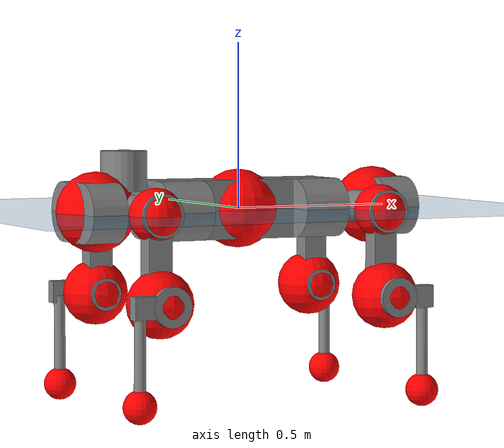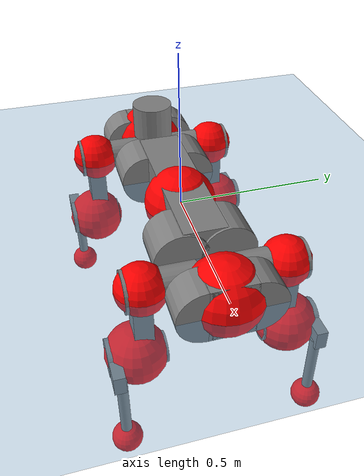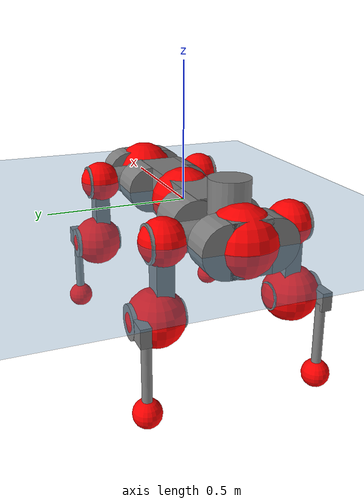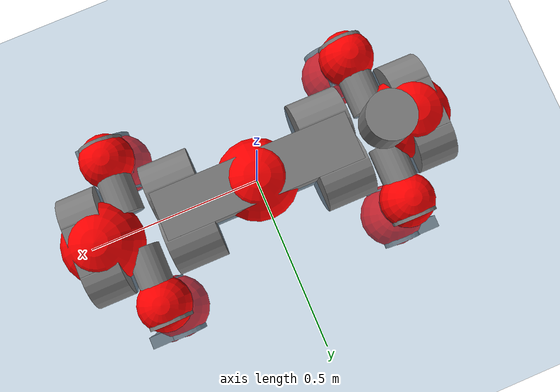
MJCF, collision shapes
<mujoco model="anymal_c">
  <compiler angle="radian" assetdir="assets" balanceinertia="true" inertiafromgeom="false"/>

  <option timestep="0.005" density="1.2" viscosity="2e-05"/>

  <size nkey="1"/>

  <visual>
    <quality shadowsize="8192"/>
    <map shadowclip="0.5"/>
  </visual>

  <default>
    <default class="/">
      <material specular="0" shininess="0.25"/>
      <geom contype="0" conaffinity="0" group="1" solref="-1000 -80"/>
      <site size="0.01 0.005 0.005" group="5"/>
      <general forcelimited="true" forcerange="-80 80" biastype="affine" gainprm="80" biasprm="0 -80 -2"/>
      <default class="anymal_c">
        <joint armature="0.01" damping="0.01" frictionloss="0.1"/>
        <default class="visual">
          <geom type="mesh" group="2"/>
          <default class="visual_zflip"/>
        </default>
        <default class="collision">
          <geom type="cylinder" group="3"/>
          <default class="foot">
            <geom size="0.03 0 0" type="sphere" condim="6" priority="1" friction="0.8 0.02 0.01" solimp="0.015 1 0.03"/>
          </default>
        </default>
      </default>
      <default class="reward_collision_sphere">
        <geom group="5" rgba="1 0 0 1"/>
      </default>
    </default>
  </default>

  <asset>
    <texture type="skybox" colorspace="auto" name="//unnamed_texture_0" builtin="gradient" rgb1="0.95 0.95 0.95" rgb2="0.95 0.95 0.95" width="100" height="600"/>
    <texture type="2d" colorspace="auto" name="texplane" builtin="checker" rgb1="0.345 0.575 0.748" rgb2="0.345 0.575 0.748" markrgb="1 1 1" width="512" height="512"/>
    <texture type="2d" colorspace="linear" name="base" file="base.png"/>
    <texture type="2d" colorspace="linear" name="top_shell" file="top_shell.png"/>
    <texture type="2d" colorspace="linear" name="bottom_shell" file="bottom_shell.png"/>
    <texture type="2d" colorspace="linear" name="remote" file="remote.png"/>
    <texture type="2d" colorspace="linear" name="hatch" file="hatch.png"/>
    <texture type="2d" colorspace="linear" name="handle" file="handle.png"/>
    <texture type="2d" colorspace="linear" name="face" file="face.png"/>
    <texture type="2d" colorspace="linear" name="battery" file="battery.png"/>
    <texture type="2d" colorspace="linear" name="lidar_cage" file="lidar_cage.png"/>
    <texture type="2d" colorspace="linear" name="depth_camera" file="depth_camera.png"/>
    <texture type="2d" colorspace="linear" name="wide_angle_camera" file="wide_angle_camera.png"/>
    <texture type="2d" colorspace="linear" name="lidar" file="lidar.png"/>
    <texture type="2d" colorspace="linear" name="drive" file="drive.png"/>
    <texture type="2d" colorspace="linear" name="hip_l" file="hip_l.png"/>
    <texture type="2d" colorspace="linear" name="shank_l" file="shank_l.png"/>
    <texture type="2d" colorspace="linear" name="foot" file="foot.png"/>
    <texture type="2d" colorspace="linear" name="thigh" file="thigh.png"/>
    <texture type="2d" colorspace="linear" name="shank_r" file="shank_r.png"/>
    <texture type="2d" colorspace="linear" name="hip_r" file="hip_r.png"/>
    <material name="MatPlane" class="/" texture="texplane" texuniform="true" texrepeat="2 2" specular="0.9" shininess="0.5"/>
    <material name="black_plastic" class="/" rgba="0.007 0.007 0.007 1"/>
    <material name="green" class="/" rgba="0.052 0.178 0.033 1"/>
    <material name="red" class="/" rgba="0.178 0.006 0.005 1"/>
    <material name="yellow" class="/" rgba="0.178 0.119 0.006 1"/>
    <material name="lwl" class="/" rgba="0.8 0.8 0.8 1"/>
    <material name="base" class="/" texture="base"/>
    <material name="top_shell" class="/" texture="top_shell"/>
    <material name="bottom_shell" class="/" texture="bottom_shell"/>
    <material name="hip_l" class="/" texture="hip_l"/>
    <material name="thigh" class="/" texture="thigh"/>
    <material name="shank_l" class="/" texture="shank_l"/>
    <material name="foot" class="/" texture="foot"/>
    <material name="hip_r" class="/" texture="hip_r"/>
    <material name="shank" class="/" texture="shank_r"/>
    <material name="hatch" class="/" texture="hatch"/>
    <material name="remote" class="/" texture="remote"/>
    <material name="handle" class="/" texture="handle"/>
    <material name="face" class="/" texture="face"/>
    <material name="depth_camera" class="/" texture="depth_camera"/>
    <material name="wide_angle_camera" class="/" texture="wide_angle_camera"/>
    <material name="battery" class="/" texture="battery"/>
    <material name="lidar_cage" class="/" texture="lidar_cage"/>
    <material name="lidar" class="/" texture="lidar"/>
    <material name="drive" class="/" texture="drive"/>
    <mesh name="base_0" class="/" file="base_0.obj"/>
    <mesh name="base_1" class="/" file="base_1.obj"/>
    <mesh name="base_2" class="/" file="base_2.obj"/>
    <mesh name="base_3" class="/" file="base_3.obj"/>
    <mesh name="base_4" class="/" file="base_4.obj"/>
    <mesh name="base_5" class="/" file="base_5.obj"/>
    <mesh name="top_shell" class="/" file="top_shell.obj"/>
    <mesh name="bottom_shell" class="/" file="bottom_shell.obj"/>
    <mesh name="remote" class="/" file="remote.obj"/>
    <mesh name="handle" class="/" file="handle.obj"/>
    <mesh name="face" class="/" file="face.obj"/>
    <mesh name="wide_angle_camera" class="/" file="wide_angle_camera.obj"/>
    <mesh name="depth_camera" class="/" file="depth_camera.obj"/>
    <mesh name="battery" class="/" file="battery.obj"/>
    <mesh name="lidar_cage" class="/" file="lidar_cage.obj"/>
    <mesh name="lidar" class="/" file="lidar.obj"/>
    <mesh name="drive" class="/" file="drive.obj"/>
    <mesh name="hip_l" class="/" file="hip_l.obj"/>
    <mesh name="thigh" class="/" file="thigh.obj"/>
    <mesh name="shank_l" class="/" file="shank_l.obj"/>
    <mesh name="foot" class="/" file="foot.obj"/>
    <mesh name="hip_r" class="/" file="hip_r.obj"/>
    <mesh name="hatch" class="/" file="hatch.obj"/>
    <mesh name="shank_r" class="/" file="shank_r.obj"/>
  </asset>

  <worldbody>
    <geom name="floor" class="/" size="100 100 0.125" type="plane" group="0" material="MatPlane"/>
    <light name="toplight_shadow" class="/" pos="0 0 5" dir="0.0990148 0.0990148 -0.990148" type="directional" ambient="0.04 0.04 0.04" diffuse="0.55 0.55 0.55" specular="0.12 0.12 0.12"/>
    <light name="toplight_fill" class="/" pos="0 0 5" dir="0.0990148 0.0990148 -0.990148" type="directional" castshadow="false" ambient="0.04 0.04 0.04" diffuse="0.3 0.3 0.3" specular="0.08 0.08 0.08"/>
    <body name="trunk" childclass="anymal_c" pos="-0.00270099 -0.00215127 8.4136e-05" quat="0.999999 -0.000977635 0.000763611 0.000404959">
      <inertial pos="-7.1595e-05 0.000585538 0.044785" quat="0.500142 0.500377 0.499563 0.499918" mass="18.3571" diaginertia="0.759342 0.775574 0.129166"/>
      <joint name="//unnamed_joint_0" type="free" armature="0" damping="0" frictionloss="0"/>
      <geom name="//unnamed_geom_1" class="visual" material="green" mesh="base_0"/>
      <geom name="//unnamed_geom_2" class="visual" material="yellow" mesh="base_1"/>
      <geom name="//unnamed_geom_3" class="visual" material="red" mesh="base_2"/>
      <geom name="//unnamed_geom_4" class="visual" material="black_plastic" mesh="base_3"/>
      <geom name="//unnamed_geom_5" class="visual" material="lwl" mesh="base_4"/>
      <geom name="//unnamed_geom_6" class="visual" material="base" mesh="base_5"/>
      <geom name="trunk_1" class="collision" size="0.287928 0.0694999 0.089357" type="box"/>
      <geom name="trunk_2" class="collision" size="0.089357 0.0719821" pos="0.225067 0.0732773 0" quat="0.707107 0 0.707107 0"/>
      <geom name="trunk_3" class="collision" size="0.089357 0.0719821" pos="-0.225067 0.0732773 0" quat="0.707107 0 0.707107 0"/>
      <geom name="trunk_4" class="collision" size="0.089357 0.0719821" pos="0.225067 -0.0732773 0" quat="0.707107 0 0.707107 0"/>
      <geom name="trunk_5" class="collision" size="0.089357 0.0719821" pos="-0.225067 -0.0732773 0" quat="0.707107 0 0.707107 0"/>
      <geom name="//unnamed_geom_12" class="visual" material="top_shell" mesh="top_shell"/>
      <geom name="//unnamed_geom_13" class="visual" material="bottom_shell" mesh="bottom_shell"/>
      <geom name="//unnamed_geom_14" class="visual" material="remote" mesh="remote"/>
      <geom name="//unnamed_geom_15" class="visual" material="handle" mesh="handle"/>
      <geom name="//unnamed_geom_16" class="visual" pos="0.428921 0 0" quat="1 0 0 0" material="face" mesh="face"/>
      <geom name="trunk_6" class="collision" size="0.0546071 0.0694999 0.089357" pos="0.485834 0 0" type="box"/>
      <geom name="//unnamed_geom_18" class="collision" size="0.089357 0.0546071" pos="0.485834 0.0732773 0" quat="0.707107 0 0.707107 0"/>
      <geom name="//unnamed_geom_19" class="collision" size="0.089357 0.0546071" pos="0.485834 -0.0732773 0" quat="0.707107 0 0.707107 0"/>
      <geom name="//unnamed_geom_20" class="visual" pos="0.477706 0 -0.0251436" quat="0.965926 0 0.258819 0" material="depth_camera" mesh="depth_camera"/>
      <geom name="//unnamed_geom_21" class="visual" pos="0.530848 0 0.0134275" material="wide_angle_camera" mesh="wide_angle_camera"/>
      <geom name="//unnamed_geom_22" class="visual_zflip" pos="-0.428921 0 0" quat="0 0 0 1" material="face" mesh="face"/>
      <geom name="trunk_7" class="collision" size="0.0546071 0.0694999 0.089357" pos="-0.485834 0 0" quat="0 0 0 1" type="box"/>
      <geom name="//unnamed_geom_24" class="collision" size="0.089357 0.0546071" pos="-0.485834 -0.0732773 0" quat="0 -0.707107 0 0.707107"/>
      <geom name="//unnamed_geom_25" class="collision" size="0.089357 0.0546071" pos="-0.485834 0.0732773 0" quat="0 -0.707107 0 0.707107"/>
      <geom name="//unnamed_geom_26" class="visual" pos="-0.477706 0 -0.0251436" quat="0 -0.258819 0 0.965926" material="depth_camera" mesh="depth_camera"/>
      <geom name="//unnamed_geom_27" class="visual_zflip" pos="-0.530848 0 0.0134275" quat="0 0 0 1" material="wide_angle_camera" mesh="wide_angle_camera"/>
      <geom name="//unnamed_geom_28" class="visual" material="battery" mesh="battery"/>
      <geom name="//unnamed_geom_29" class="visual" pos="0 0.0801919 0.0271042" quat="0.683013 -0.183013 0.183013 0.683013" material="depth_camera" mesh="depth_camera"/>
      <geom name="//unnamed_geom_30" class="visual" pos="0 -0.0801919 0.0271042" quat="0.683013 0.183013 0.183013 -0.683013" material="depth_camera" mesh="depth_camera"/>
      <geom name="//unnamed_geom_31" class="visual" pos="-0.376664 0 0.0659264" quat="1 0 0 0" material="lidar_cage" mesh="lidar_cage"/>
      <geom name="trunk_8" class="collision" size="0.0694999 0.0595714" pos="-0.376664 0 0.119744"/>
      <geom name="//unnamed_geom_33" class="visual" pos="-0.376664 4.72547e-06 0.127547" quat="0.707107 0 0 -0.707107" material="lidar" mesh="lidar"/>
      <geom name="//unnamed_geom_34" class="visual" pos="0.310334 0.108816 2.58513e-09" quat="0.258819 0.965926 0 0" material="drive" mesh="drive"/>
      <geom name="//unnamed_geom_35" class="visual" pos="0.310334 -0.108816 -2.58513e-09" quat="0.258819 -0.965926 0 0" material="drive" mesh="drive"/>
      <geom name="//unnamed_geom_36" class="visual" pos="-0.310334 0.108816 -2.58513e-09" quat="0 0 0.965926 -0.258819" material="drive" mesh="drive"/>
      <geom name="//unnamed_geom_37" class="visual" pos="-0.310334 -0.108816 2.58513e-09" quat="0 0 -0.965926 -0.258819" material="drive" mesh="drive"/>
      <geom name="//unnamed_geom_38" class="visual" pos="0.120036 0 0.0654779" quat="1 0 0 0" material="hatch" mesh="hatch"/>
      <geom name="//unnamed_geom_39" class="reward_collision_sphere" size="0.119143"/>
      <geom name="//unnamed_geom_40" class="reward_collision_sphere" size="0.119143" pos="0.465656 0 0"/>
      <geom name="//unnamed_geom_41" class="reward_collision_sphere" size="0.119143" pos="-0.465656 0 0"/>
      <site name="imu" pos="0.260219 0.00720091 0.0460594" size="0.00992856"/>
      <camera name="track" pos="0 -2.09364 0" quat="0.707107 0.707107 0 0" mode="trackcom"/>
      <camera name="ego_camera" pos="0.465656 0 -0.0358783" quat="-0.5 -0.5 0.5 0.5"/>
      <body name="LF_HIP" pos="0.310023 0.107854 0.00071916" quat="0.25884 0.965919 0.000308831 0.00119638">
        <inertial pos="0.0561164 -0.0166097 -0.00834604" quat="-0.129237 0.71053 -0.135551 0.678286" mass="2.8393" diaginertia="0.00727024 0.00617451 0.00200451"/>
        <joint name="LF_HAA" pos="0 0 0" axis="0.999992 0.00357615 0.00156399" range="-0.723606 0.435088" armature="0.011155" damping="0" frictionloss="0.100054"/>
        <geom name="//unnamed_geom_42" class="visual" pos="0 0.000152071 -2.49776e-05" quat="0.258819 -0.965926 0 0" material="hip_l" mesh="hip_l"/>
        <geom name="//unnamed_geom_43" class="visual" pos="0.061984 -0.0752119 -0.0423152" quat="0.183013 -0.683013 0.683013 0.183013" material="drive" mesh="drive"/>
        <geom name="//unnamed_geom_44" class="collision" size="0.0496428 0.0694999" pos="0.061984 -0.0125197 -0.00619349" quat="-0.353553 -0.612372 0.612372 -0.353553"/>
        <body name="LF_THIGH" pos="0.0630513 -0.0777493 -0.0376632" quat="0.183127 -0.683083 0.682872 0.183162">
          <inertial pos="0.0347388 0.000467109 -0.217532" quat="0.993173 -0.00456921 -0.0803103 0.0844835" mass="3.03458" diaginertia="0.0358729 0.0370391 0.00242725"/>
          <joint name="LF_HFE" pos="0 0 0" axis="0.999988 -0.00486245 0.000334063" stiffness="0.0125439" range="-3.19665 3.18652" armature="0.0111665" damping="0" frictionloss="0.103219"/>
          <geom name="//unnamed_geom_45" class="visual" pos="-0.000239309 -3.77096e-07 0" quat="0.707107 0 0 -0.707107" material="thigh" mesh="thigh"/>
          <geom name="//unnamed_geom_46" class="collision" size="0.0645356 0.0397142" pos="0.0413917 0 0" quat="0.5 0.5 -0.5 -0.5"/>
          <geom name="//unnamed_geom_47" class="collision" size="0.0372321 0.0297857 0.140304" pos="0.0310437 0 -0.126753" quat="0.707107 0 0 -0.707107" type="box"/>
          <geom name="//unnamed_geom_48" class="visual" pos="0.10379 0 -0.255633" quat="1 0 0 0" material="drive" mesh="drive"/>
          <geom name="//unnamed_geom_49" class="collision" size="0.0496428 0.0694999" pos="0.0313542 0 -0.255633" quat="0.707107 0 0.707107 0"/>
          <geom name="//unnamed_geom_50" class="reward_collision_sphere" size="0.0794285" pos="0.0258698 0 0"/>
          <body name="LF_SHANK" pos="0.103218 -0.000943537 -0.256126" quat="1 8.26101e-05 -0.000184361 0.000848978">
            <inertial pos="0.00713468 -0.0630481 -0.074777" quat="0.993265 -0.114846 0.0064034 -0.0139474" mass="0.569622" diaginertia="0.0121467 0.0117388 0.00063395"/>
            <joint name="LF_KFE" pos="0 0 0" axis="0.999987 0.00412906 -0.00295465" range="-3.13884 3.08569" armature="0.00930871" damping="0.0100245" frictionloss="0.103004"/>
            <geom name="//unnamed_geom_51" class="visual" pos="-7.80336e-05 -0.000416079 0" quat="0.707107 0 0 -0.707107" material="shank_l" mesh="shank_l"/>
            <geom name="LF_kfe_act" class="collision" size="0.0595714 0.0198571" pos="0.0206958 0 0" quat="0.5 0.5 -0.5 -0.5"/>
            <geom name="//unnamed_geom_53" class="collision" size="0.0570882 0.0335089 0.0188643" pos="0.0206958 -0.0601911 0" quat="0.5 0.5 -0.5 -0.5" type="box"/>
            <geom name="//unnamed_geom_54" class="visual" pos="0.013504 -0.0922018 -0.303145" quat="0.382683 0 0 -0.92388" material="foot" mesh="foot"/>
            <geom name="LF_calf" class="collision" size="0.017375 0.140243" pos="0.013504 -0.0920678 -0.151572" quat="0.707107 0 0 -0.707107"/>
            <geom name="LF_foot" class="foot" size="0.0320693" pos="0.013504 -0.0920678 -0.282963" quat="0.707107 0 0 -0.707107"/>
            <geom name="//unnamed_geom_57" class="reward_collision_sphere" size="0.0992856" pos="-0.0517396 0 0"/>
            <geom name="//unnamed_geom_58" class="reward_collision_sphere" size="0.0496428" pos="0.013504 -0.0920678 -0.282963"/>
            <site name="LF_foot" class="foot" pos="0.013504 -0.0920678 -0.282963" quat="0.707107 0 0 -0.707107" size="0.00992856"/>
          </body>
        </body>
      </body>
      <body name="RF_HIP" pos="0.310995 -0.106771 0.00154191" quat="0.258825 -0.965924 2.95376e-05 1.20021e-05">
        <inertial pos="0.0613232 0.0156485 -0.00752546" quat="0.13556 0.680661 0.127328 0.708599" mass="2.87233" diaginertia="0.00721374 0.00643386 0.00191777"/>
        <joint name="RF_HAA" pos="0 0 0" axis="1 -0.000105818 0.00019276" range="-0.467274 0.731494" armature="0.00864693" damping="0.00973039" frictionloss="0.112572"/>
        <geom name="//unnamed_geom_59" class="visual" pos="0 -0.00015207 -2.49775e-05" quat="0.258819 0.965926 0 0" material="hip_r" mesh="hip_r"/>
        <geom name="//unnamed_geom_60" class="visual" pos="0.061984 0.0752119 -0.0423152" quat="0.183013 0.683013 0.683013 -0.183013" material="drive" mesh="drive"/>
        <geom name="//unnamed_geom_61" class="collision" size="0.0496428 0.0694999" pos="0.061984 0.0125197 -0.00619349" quat="-0.353553 0.612372 0.612372 0.353553"/>
        <body name="RF_THIGH" pos="0.0612338 0.0761957 -0.0353628" quat="0.1827 0.682762 0.683005 -0.184285">
          <inertial pos="0.0297386 -0.00272588 -0.219072" quat="0.993199 -0.00464495 -0.0790757 0.0853355" mass="2.92187" diaginertia="0.0360185 0.0375838 0.00235986"/>
          <joint name="RF_HFE" pos="0 0 0" axis="0.999996 0.00092468 -0.00262572" stiffness="0.00854511" range="-3.1273 3.14489" armature="0.00995834" damping="0.00988848" frictionloss="0.100323"/>
          <geom name="//unnamed_geom_62" class="visual" pos="-0.000239309 -3.77096e-07 0" quat="0.707107 0 0 -0.707107" material="thigh" mesh="thigh"/>
          <geom name="//unnamed_geom_63" class="collision" size="0.0645356 0.0397142" pos="0.0413917 0 0" quat="0.5 0.5 0.5 0.5"/>
          <geom name="//unnamed_geom_64" class="collision" size="0.0372321 0.0297857 0.140304" pos="0.0310437 0 -0.126753" quat="0.707107 0 0 0.707107" type="box"/>
          <geom name="//unnamed_geom_65" class="visual" pos="0.10379 0 -0.255633" quat="1 0 0 0" material="drive" mesh="drive"/>
          <geom name="//unnamed_geom_66" class="collision" size="0.0496428 0.0694999" pos="0.0313542 0 -0.255633" quat="0.707107 0 0.707107 0"/>
          <geom name="//unnamed_geom_67" class="reward_collision_sphere" size="0.0794285" pos="0.0258698 0 0"/>
          <body name="RF_SHANK" pos="0.105368 -0.000230576 -0.254048" quat="1 -1.50861e-05 0.000163479 -1.13208e-05">
            <inertial pos="0.00698186 0.0641241 -0.0712701" quat="0.992587 0.118495 0.0013214 0.0269711" mass="0.587958" diaginertia="0.0128802 0.0116577 0.000675281"/>
            <joint name="RF_KFE" pos="0 0 0" axis="0.999901 0.00236267 0.0138599" range="-3.12239 3.14626" armature="0.0100405" damping="0.0139961" frictionloss="0.0943042"/>
            <geom name="//unnamed_geom_68" class="visual" pos="-7.80332e-05 0.000416078 0" quat="0.707107 0 0 0.707107" material="shank" mesh="shank_r"/>
            <geom name="RF_kfe_act" class="collision" size="0.0595714 0.0198571" pos="0.0206958 0 0" quat="0.5 0.5 0.5 0.5"/>
            <geom name="//unnamed_geom_70" class="collision" size="0.0570882 0.0335089 0.0188643" pos="0.0206958 0.0601911 0" quat="0.5 0.5 0.5 0.5" type="box"/>
            <geom name="//unnamed_geom_71" class="visual" pos="0.013504 0.0922018 -0.303145" quat="0.382683 0 0 0.92388" material="foot" mesh="foot"/>
            <geom name="RF_calf" class="collision" size="0.017375 0.140243" pos="0.013504 0.0920678 -0.151572" quat="0.707107 0 0 0.707107"/>
            <geom name="RF_foot" class="foot" size="0.0289083" pos="0.013504 0.0920678 -0.282963" quat="0.707107 0 0 0.707107"/>
            <geom name="//unnamed_geom_74" class="reward_collision_sphere" size="0.0992856" pos="-0.0517396 0 0"/>
            <geom name="//unnamed_geom_75" class="reward_collision_sphere" size="0.0496428" pos="0.013504 0.0920678 -0.282963"/>
            <site name="RF_foot" class="foot" pos="0.013504 0.0920678 -0.282963" quat="0.707107 0 0 0.707107" size="0.00992856"/>
          </body>
        </body>
      </body>
      <body name="LH_HIP" pos="-0.309156 0.10771 0.00196675" quat="0.00078545 0.000349149 0.965725 -0.259566">
        <inertial pos="0.0614568 0.0169037 -0.00774267" quat="0.134862 0.679114 0.127826 0.710125" mass="2.69921" diaginertia="0.00699046 0.0063979 0.00194387"/>
        <joint name="LH_HAA" pos="0 0 0" axis="0.999982 -0.00159911 -0.00583662" range="-0.47229 0.705985" armature="0.0100012" damping="0.0103366" frictionloss="0.0986282"/>
        <geom name="//unnamed_geom_76" class="visual" pos="0 -0.00015207 -2.49775e-05" quat="-0.258819 -0.965926 0 0" material="hip_r" mesh="hip_r"/>
        <geom name="//unnamed_geom_77" class="visual" pos="0.061984 0.0752119 -0.0423152" quat="0.183013 0.683013 0.683013 -0.183013" material="drive" mesh="drive"/>
        <geom name="//unnamed_geom_78" class="collision" size="0.0496428 0.0694999" pos="0.061984 0.0125197 -0.00619349" quat="-0.353553 0.612372 0.612372 0.353553"/>
        <body name="LH_THIGH" pos="0.0586159 0.0766109 -0.0355864" quat="0.184138 0.683149 0.682649 -0.182734">
          <inertial pos="0.0315715 0.000900493 -0.219234" quat="0.992618 0.00796577 -0.0843154 0.0868178" mass="2.89978" diaginertia="0.0354543 0.0363356 0.00240918"/>
          <joint name="LH_HFE" pos="0 0 0" axis="0.999995 0.000590295 -0.00313137" range="-3.12398 3.13337" armature="0.00903997" damping="0" frictionloss="0.101332"/>
          <geom name="//unnamed_geom_79" class="visual" pos="-0.000239309 -3.77096e-07 0" quat="0.707107 0 0 -0.707107" material="thigh" mesh="thigh"/>
          <geom name="//unnamed_geom_80" class="collision" size="0.0645356 0.0397142" pos="0.0413917 0 0" quat="0.5 0.5 -0.5 -0.5"/>
          <geom name="//unnamed_geom_81" class="collision" size="0.0372321 0.0297857 0.140304" pos="0.0310437 0 -0.126753" quat="0.707107 0 0 -0.707107" type="box"/>
          <geom name="//unnamed_geom_82" class="visual" pos="0.10379 0 -0.255633" quat="1 0 0 0" material="drive" mesh="drive"/>
          <geom name="//unnamed_geom_83" class="collision" size="0.0496428 0.0694999" pos="0.0313542 0 -0.255633" quat="0.707107 0 0.707107 0"/>
          <geom name="//unnamed_geom_84" class="reward_collision_sphere" size="0.0794285" pos="0.0258698 0 0"/>
          <body name="LH_SHANK" pos="0.103268 -0.00130239 -0.255366" quat="1 -0.000145704 -5.34205e-05 -7.14996e-07">
            <inertial pos="0.0055415 0.0639949 -0.0709659" quat="0.992939 0.115826 -0.00122498 0.0256109" mass="0.572034" diaginertia="0.0120885 0.0116758 0.000646264"/>
            <joint name="LH_KFE" pos="0 0 0" axis="0.999999 0.000360517 0.00105913" stiffness="0.000485594" range="-3.12468 3.13811" armature="0.00982787" damping="0" frictionloss="0.0965916"/>
            <geom name="//unnamed_geom_85" class="visual" pos="-7.80332e-05 0.000416078 0" quat="-0.707107 0 0 -0.707107" material="shank" mesh="shank_r"/>
            <geom name="LH_kfe_act" class="collision" size="0.0595714 0.0198571" pos="0.0206958 0 0" quat="0.5 0.5 -0.5 -0.5"/>
            <geom name="//unnamed_geom_87" class="collision" size="0.0570882 0.0335089 0.0188643" pos="0.0206958 0.0601911 0" quat="0.5 0.5 -0.5 -0.5" type="box"/>
            <geom name="//unnamed_geom_88" class="visual" pos="0.013504 0.0922018 -0.303145" quat="-0.382683 0 0 -0.92388" material="foot" mesh="foot"/>
            <geom name="LH_calf" class="collision" size="0.017375 0.140243" pos="0.013504 0.0920678 -0.151572" quat="0.707107 0 0 -0.707107"/>
            <geom name="LH_foot" class="foot" size="0.0330437" pos="0.013504 0.0920678 -0.282963" quat="0.707107 0 0 -0.707107"/>
            <geom name="//unnamed_geom_91" class="reward_collision_sphere" size="0.0992856" pos="-0.0517396 0 0"/>
            <geom name="//unnamed_geom_92" class="reward_collision_sphere" size="0.0496428" pos="0.013504 0.0920678 -0.282963"/>
            <site name="LH_foot" class="foot" pos="0.013504 0.0920678 -0.282963" quat="0.707107 0 0 -0.707107" size="0.00992856"/>
          </body>
        </body>
      </body>
      <body name="RH_HIP" pos="-0.310881 -0.111312 0.00274516" quat="0.000458925 -0.000579889 -0.965685 -0.259714">
        <inertial pos="0.0586792 -0.0135735 -0.00758677" quat="-0.132165 0.717054 -0.140609 0.669773" mass="2.70295" diaginertia="0.00703023 0.00628157 0.00189967"/>
        <joint name="RH_HAA" pos="0 0 0" axis="0.999989 -0.00390901 0.00273973" stiffness="0.0088914" range="-0.741216 0.496049" armature="0.011401" damping="0.0215223" frictionloss="0.0857421"/>
        <geom name="//unnamed_geom_93" class="visual" pos="0 0.000152071 -2.49776e-05" quat="-0.258819 0.965926 0 0" material="hip_l" mesh="hip_l"/>
        <geom name="//unnamed_geom_94" class="visual" pos="0.061984 -0.0752119 -0.0423152" quat="-0.183013 0.683013 -0.683013 -0.183013" material="drive" mesh="drive"/>
        <geom name="//unnamed_geom_95" class="collision" size="0.0496428 0.0694999" pos="0.061984 -0.0125197 -0.00619349" quat="0.353553 0.612372 -0.612372 0.353553"/>
        <body name="RH_THIGH" pos="0.0617267 -0.0752661 -0.040177" quat="-0.183034 0.683021 -0.682978 -0.183093">
          <inertial pos="0.0317797 -0.000991022 -0.219902" quat="0.993111 -0.00627815 -0.0803934 0.085012" mass="2.9882" diaginertia="0.0359365 0.0377704 0.00235221"/>
          <joint name="RH_HFE" pos="0 0 0" axis="0.999991 -0.000747796 -0.00417319" range="-3.19569 3.1787" armature="0.0104928" damping="0.0137344" frictionloss="0.104032"/>
          <geom name="//unnamed_geom_96" class="visual" pos="-0.000239309 -3.77096e-07 0" quat="0.707107 0 0 -0.707107" material="thigh" mesh="thigh"/>
          <geom name="//unnamed_geom_97" class="collision" size="0.0645356 0.0397142" pos="0.0413917 0 0" quat="0.5 0.5 0.5 0.5"/>
          <geom name="//unnamed_geom_98" class="collision" size="0.0372321 0.0297857 0.140304" pos="0.0310437 0 -0.126753" quat="0.707107 0 0 0.707107" type="box"/>
          <geom name="//unnamed_geom_99" class="visual" pos="0.10379 0 -0.255633" quat="1 0 0 0" material="drive" mesh="drive"/>
          <geom name="//unnamed_geom_100" class="collision" size="0.0496428 0.0694999" pos="0.0313542 0 -0.255633" quat="0.707107 0 0.707107 0"/>
          <geom name="//unnamed_geom_101" class="reward_collision_sphere" size="0.0794285" pos="0.0258698 0 0"/>
          <body name="RH_SHANK" pos="0.10101 0.00276061 -0.25621" quat="1 -0.000486684 0.000127875 -0.000104434">
            <inertial pos="0.00818549 -0.0641756 -0.0711966" quat="0.992977 -0.115509 -0.000953014 -0.0255789" mass="0.574576" diaginertia="0.0118329 0.0109079 0.000643701"/>
            <joint name="RH_KFE" pos="0 0 0" axis="0.999991 -0.00413903 0.000921783" range="-3.0775 3.18482" armature="0.00855956" damping="0.00287081" frictionloss="0.0948752"/>
            <geom name="//unnamed_geom_102" class="visual" pos="-7.80336e-05 -0.000416079 0" quat="0.707107 0 0 -0.707107" material="shank_l" mesh="shank_l"/>
            <geom name="RH_kfe_act" class="collision" size="0.0595714 0.0198571" pos="0.0206958 0 0" quat="0.5 0.5 0.5 0.5"/>
            <geom name="//unnamed_geom_104" class="collision" size="0.0570882 0.0335089 0.0188643" pos="0.0206958 -0.0601911 0" quat="0.5 0.5 0.5 0.5" type="box"/>
            <geom name="//unnamed_geom_105" class="visual" pos="0.013504 -0.0922018 -0.303145" quat="0.382683 0 0 -0.92388" material="foot" mesh="foot"/>
            <geom name="RH_calf" class="collision" size="0.017375 0.140243" pos="0.013504 -0.0920678 -0.151572" quat="0.707107 0 0 0.707107"/>
            <geom name="RH_foot" class="foot" size="0.0298568" pos="0.013504 -0.0920678 -0.282963" quat="0.707107 0 0 0.707107"/>
            <geom name="//unnamed_geom_108" class="reward_collision_sphere" size="0.0992856" pos="-0.0517396 0 0"/>
            <geom name="//unnamed_geom_109" class="reward_collision_sphere" size="0.0496428" pos="0.013504 -0.0920678 -0.282963"/>
            <site name="RH_foot" class="foot" pos="0.013504 -0.0920678 -0.282963" quat="0.707107 0 0 0.707107" size="0.00992856"/>
          </body>
        </body>
      </body>
    </body>
  </worldbody>

  <contact>
    <pair class="/" geom1="floor" geom2="LF_foot" name="//unnamed_contact_0"/>
    <pair class="/" geom1="floor" geom2="RF_foot" name="//unnamed_contact_1"/>
    <pair class="/" geom1="floor" geom2="LH_foot" name="//unnamed_contact_2"/>
    <pair class="/" geom1="floor" geom2="RH_foot" name="//unnamed_contact_3"/>
  </contact>

  <actuator>
    <general name="LF_HAA" class="/" joint="LF_HAA" forcerange="-79.0732 79.0732" gainprm="79.7734" biasprm="0 -79.7734 -1.89218"/>
    <general name="LF_HFE" class="/" joint="LF_HFE" forcerange="-77.1361 77.1361" gainprm="79.7734" biasprm="0 -79.7734 -1.89218"/>
    <general name="LF_KFE" class="/" joint="LF_KFE" forcerange="-79.4859 79.4859" gainprm="79.7734" biasprm="0 -79.7734 -1.89218"/>
    <general name="RF_HAA" class="/" joint="RF_HAA" forcerange="-87.3853 87.3853" gainprm="79.7734" biasprm="0 -79.7734 -1.89218"/>
    <general name="RF_HFE" class="/" joint="RF_HFE" forcerange="-79.8809 79.8809" gainprm="79.7734" biasprm="0 -79.7734 -1.89218"/>
    <general name="RF_KFE" class="/" joint="RF_KFE" forcerange="-72.6115 72.6115" gainprm="79.7734" biasprm="0 -79.7734 -1.89218"/>
    <general name="LH_HAA" class="/" joint="LH_HAA" forcerange="-79.7895 79.7895" gainprm="79.7734" biasprm="0 -79.7734 -1.89218"/>
    <general name="LH_HFE" class="/" joint="LH_HFE" forcerange="-80.0611 80.0611" gainprm="79.7734" biasprm="0 -79.7734 -1.89218"/>
    <general name="LH_KFE" class="/" joint="LH_KFE" forcerange="-79.996 79.996" gainprm="79.7734" biasprm="0 -79.7734 -1.89218"/>
    <general name="RH_HAA" class="/" joint="RH_HAA" forcerange="-77.016 77.016" gainprm="79.7734" biasprm="0 -79.7734 -1.89218"/>
    <general name="RH_HFE" class="/" joint="RH_HFE" forcerange="-81.9597 81.9597" gainprm="79.7734" biasprm="0 -79.7734 -1.89218"/>
    <general name="RH_KFE" class="/" joint="RH_KFE" forcerange="-87.8152 87.8152" gainprm="79.7734" biasprm="0 -79.7734 -1.89218"/>
  </actuator>

  <sensor>
    <gyro site="imu" name="imu_angular_velocity"/>
    <velocimeter site="imu" name="imu_linear_velocity"/>
    <framelinvel objtype="site" objname="LF_foot" name="LF_foot_global_linear_velocity"/>
    <framelinvel objtype="site" objname="RF_foot" name="RF_foot_global_linear_velocity"/>
    <framelinvel objtype="site" objname="LH_foot" name="LH_foot_global_linear_velocity"/>
    <framelinvel objtype="site" objname="RH_foot" name="RH_foot_global_linear_velocity"/>
  </sensor>

  <keyframe>
    <key name="home" qpos="0 0 0.55 1 0 0 0 0 0.4 -0.8 0 -0.4 0.8 0 -0.4 0.8 0 0.4 -0.8"/>
  </keyframe>
</mujoco>
